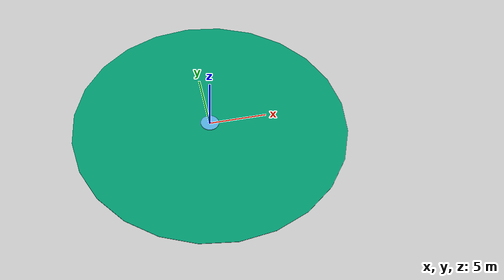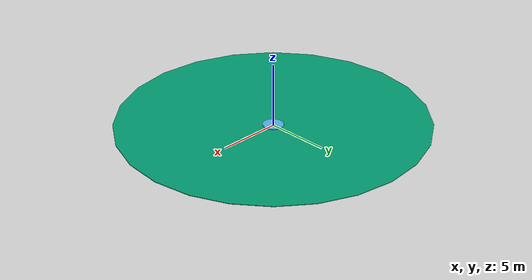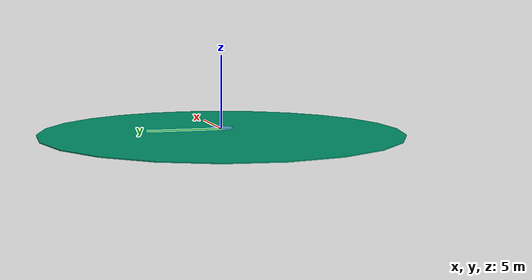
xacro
<?xml version="1.0"?>
<robot name="range" xmlns:xacro="http://www.ros.org/wiki/xacro">

  <link name="world"/>

  <joint name="fixed2" type="fixed">
    <parent link="world"/>
    <child link="ori"/>
  </joint>

  <link name="ori">
    <collision>
      <origin xyz="0 0 0.001" rpy="0 0 0"/>
      <geometry>
        <cylinder radius="0.0001" length="0.0001"/>
      </geometry>
    </collision>

    <visual>
      <origin xyz="0 0 0.05" rpy="0 0 0"/>
      <geometry>
        <cylinder radius="0.8" length="0.1"/>
      </geometry>
    </visual>

    <inertial>
      <origin xyz="0 0 1" rpy="0 0 0"/>
      <mass value="1"/>
      <inertia
        ixx="1.0" ixy="0.0" ixz="0.0"
        iyy="1.0" iyz="0.0"
        izz="1.0"/>
      </inertial>
  </link>

  <joint name="fixed1" type="fixed">
    <parent link="world"/>
    <child link="range"/>
  </joint>

  <link name="range">
    <collision>
      <origin xyz="0 0 0" rpy="0 0 0"/>
      <geometry>
        <cylinder radius="0.0001" length="0.0001"/>
      </geometry>
    </collision>

    <visual>
      <origin xyz="0 0 0" rpy="0 0 0"/>
      <geometry>
        <cylinder radius="12" length="0.05"/>
      </geometry>
    </visual>

    <inertial>
      <origin xyz="0 0 1" rpy="0 0 0"/>
      <mass value="1"/>
      <inertia
        ixx="1.0" ixy="0.0" ixz="0.0"
        iyy="1.0" iyz="0.0"
        izz="1.0"/>
      </inertial>
  </link>

  <gazebo reference="ori">
    <visual>
      <material>
        <ambient>0 0 0.5 0.1</ambient>
        <diffuse>0.46 0.46 0.46 0.5</diffuse>
        <specular>0.5 0.5 0.5 32</specular>
        <emissive>0.46 0.46 0.46 0.5</emissive>
      </material>
    </visual>
  </gazebo>

  <gazebo reference="range">
    <visual>
      <material>
        <ambient>0.3 0 0 0.1</ambient>
        <diffuse>0.46 0.46 0.46 0.5</diffuse>
        <specular>0.5 0.5 0.5 8</specular>
        <emissive>0.46 0.46 0.46 0.1</emissive>
      </material>
    </visual>
  </gazebo>

</robot>
